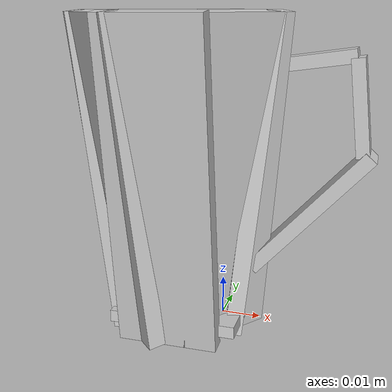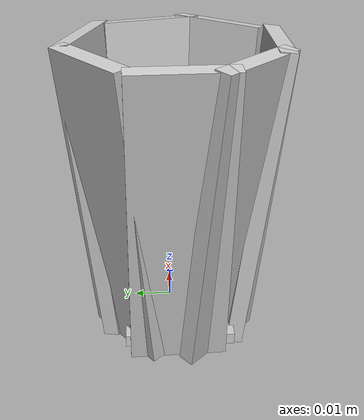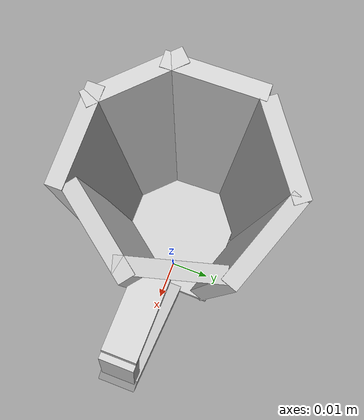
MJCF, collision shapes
<mujoco model="red_coffee_mug_small">
  <asset>
  <texture file="red_coffee_mug_texture.png" name="tex-red_coffee_mug" type="2d" />
  <material name="red_coffee_mug" reflectance="0.5" texrepeat="1 1" texture="tex-red_coffee_mug" texuniform="false" />
  <mesh file="visual/red_coffee_mug_vis.msh" name="red_coffee_mug_vis" scale="0.6 0.6 0.6" /></asset>
  <worldbody>
    <body>
      <body name="object">
      <geom solimp="0.998 0.998 0.001" solref="0.001 1" density="100" friction="0.95 0.3 0.1" type="mesh" mesh="red_coffee_mug_vis" conaffinity="0" contype="0" group="1" material="red_coffee_mug" /><geom solimp="0.998 0.998 0.001" solref="0.001 1" density="100" friction="0.95 0.3 0.1" type="box" pos="-0.00919 -0.00181 0.00316" quat="0.70711 0.00000 0.70711 0.00000" size="0.00151 0.01412 0.01612" group="0" rgba="0.8 0.8 0.8 0.3" /><geom solimp="0.998 0.998 0.001" solref="0.001 1" density="100" friction="0.95 0.3 0.1" type="box" pos="0.00470 -0.01024 0.03870" quat="0.01829 -0.94542 0.32085 0.05388" size="0.00211 0.01238 0.03982" group="0" rgba="0.8 0.8 0.8 0.3" /><geom solimp="0.998 0.998 0.001" solref="0.001 1" density="100" friction="0.95 0.3 0.1" type="box" pos="-0.00931 -0.02087 0.03870" quat="0.04024 -0.70596 -0.70596 -0.04024" size="0.00211 0.01238 0.03982" group="0" rgba="0.8 0.8 0.8 0.3" /><geom solimp="0.998 0.998 0.001" solref="0.001 1" density="100" friction="0.95 0.3 0.1" type="box" pos="0.00614 0.00335 0.03870" quat="0.98871 -0.00790 0.05635 0.13863" size="0.00211 0.01238 0.03982" group="0" rgba="0.8 0.8 0.8 0.3" /><geom solimp="0.998 0.998 0.001" solref="0.001 1" density="100" friction="0.95 0.3 0.1" type="box" pos="-0.00406 0.01697 0.03870" quat="0.80894 -0.03335 0.04610 0.58513" size="0.00211 0.01238 0.03982" group="0" rgba="0.8 0.8 0.8 0.3" /><geom solimp="0.998 0.998 0.001" solref="0.001 1" density="100" friction="0.95 0.3 0.1" type="box" pos="-0.02020 0.01471 0.03870" quat="0.05122 0.43474 0.89876 -0.02478" size="0.00211 0.01238 0.03982" group="0" rgba="0.8 0.8 0.8 0.3" /><geom solimp="0.998 0.998 0.001" solref="0.001 1" density="100" friction="0.95 0.3 0.1" type="box" pos="-0.02836 -0.00148 0.03870" quat="0.05689 -0.02366 0.99810 0.00135" size="0.00211 0.01238 0.03982" group="0" rgba="0.8 0.8 0.8 0.3" /><geom solimp="0.998 0.998 0.001" solref="0.001 1" density="100" friction="0.95 0.3 0.1" type="box" pos="-0.02297 -0.01493 0.03870" quat="0.38651 0.05247 0.02203 -0.92053" size="0.00211 0.01238 0.03982" group="0" rgba="0.8 0.8 0.8 0.3" /><geom solimp="0.998 0.998 0.001" solref="0.001 1" density="100" friction="0.95 0.3 0.1" type="box" pos="0.02211 0.00065 0.03025" quat="0.93181 -0.00000 0.36295 -0.00000" size="0.00175 0.00454 0.02055" group="0" rgba="0.8 0.8 0.8 0.3" /><geom solimp="0.998 0.998 0.001" solref="0.001 1" density="100" friction="0.95 0.3 0.1" type="box" pos="0.03284 0.00065 0.05661" quat="0.99869 0.00000 -0.05124 0.00000" size="0.00160 0.00415 0.01154" group="0" rgba="0.8 0.8 0.8 0.3" /><geom solimp="0.998 0.998 0.001" solref="0.001 1" density="100" friction="0.95 0.3 0.1" type="box" pos="0.02074 0.00065 0.06697" quat="0.75578 -0.00000 0.65483 -0.00000" size="0.00160 0.00415 0.01093" group="0" rgba="0.8 0.8 0.8 0.3" /></body>
      <site rgba="0 0 0 0" size="0.00300" pos="0.00000 0.00000 -0.03600" name="bottom_site" />
      <site rgba="0 0 0 0" size="0.00300" pos="0.00000 0.00000 0.02400" name="top_site" />
      <!-- robosuite placement uses only site pos[0] as XY radius; was 0.025 (too small → overlapping spawns). -->
      <site rgba="0 0 0 0" size="0.00300" pos="0.04800 0.04800 0.00000" name="horizontal_radius_site" />
    </body>
  </worldbody>
</mujoco>
